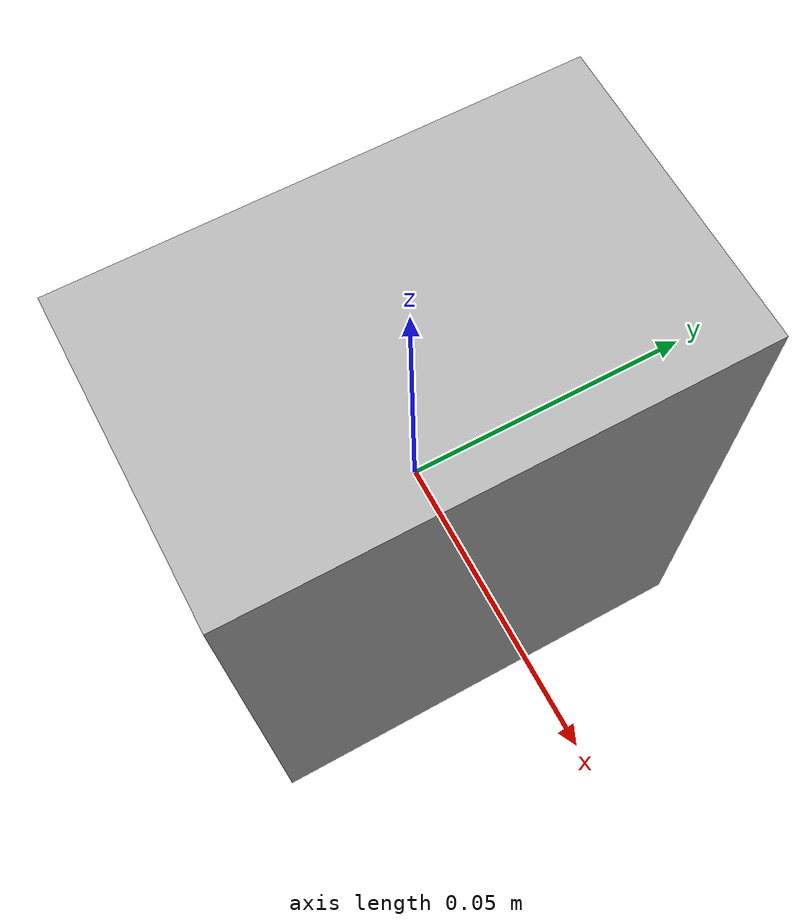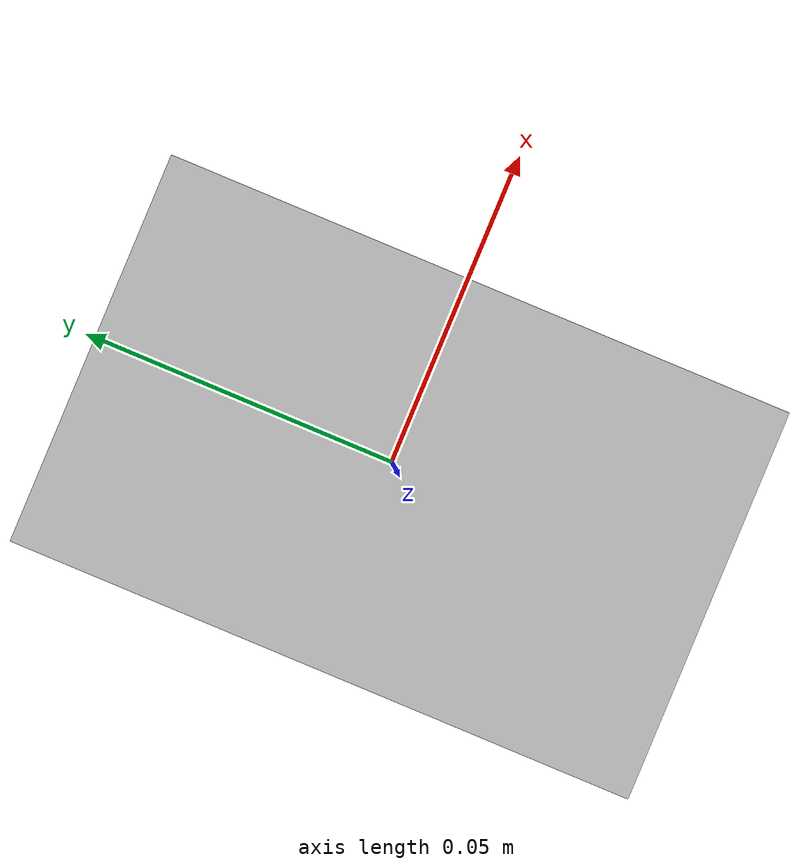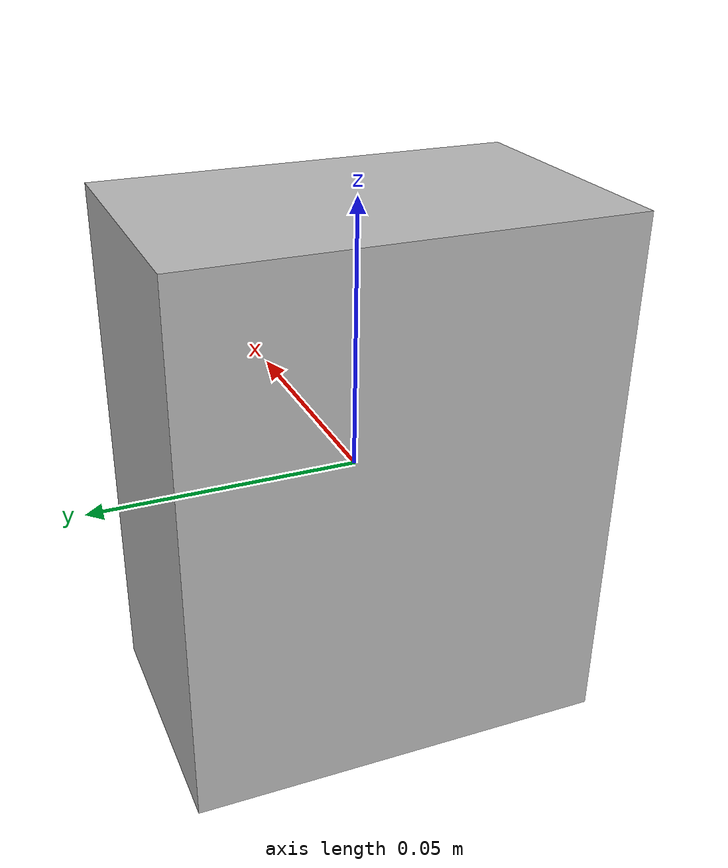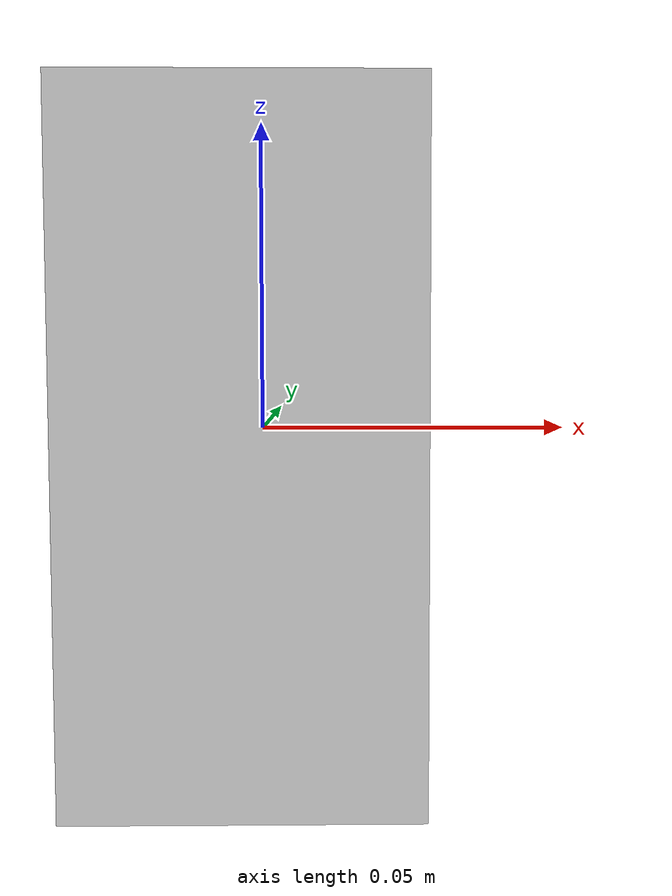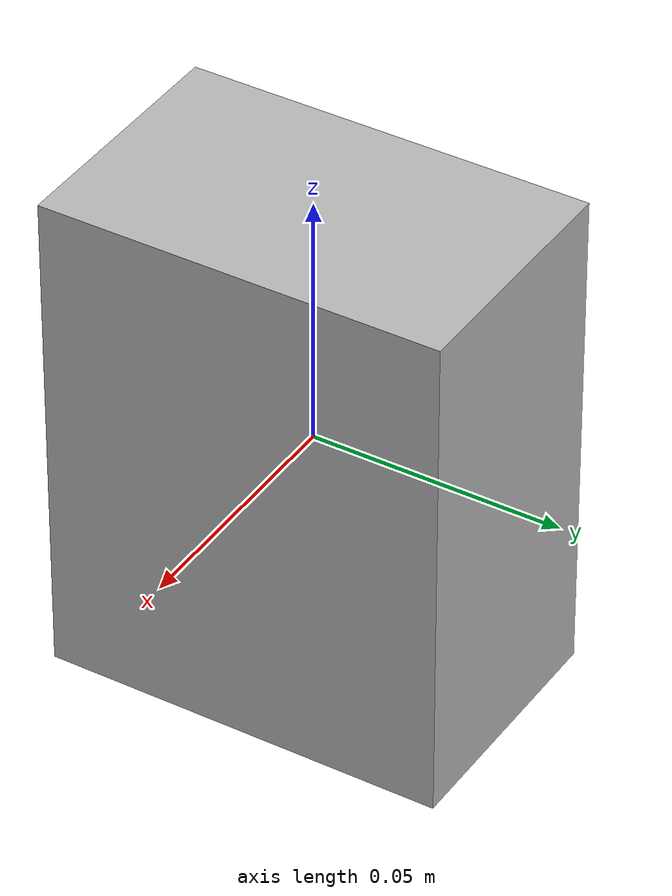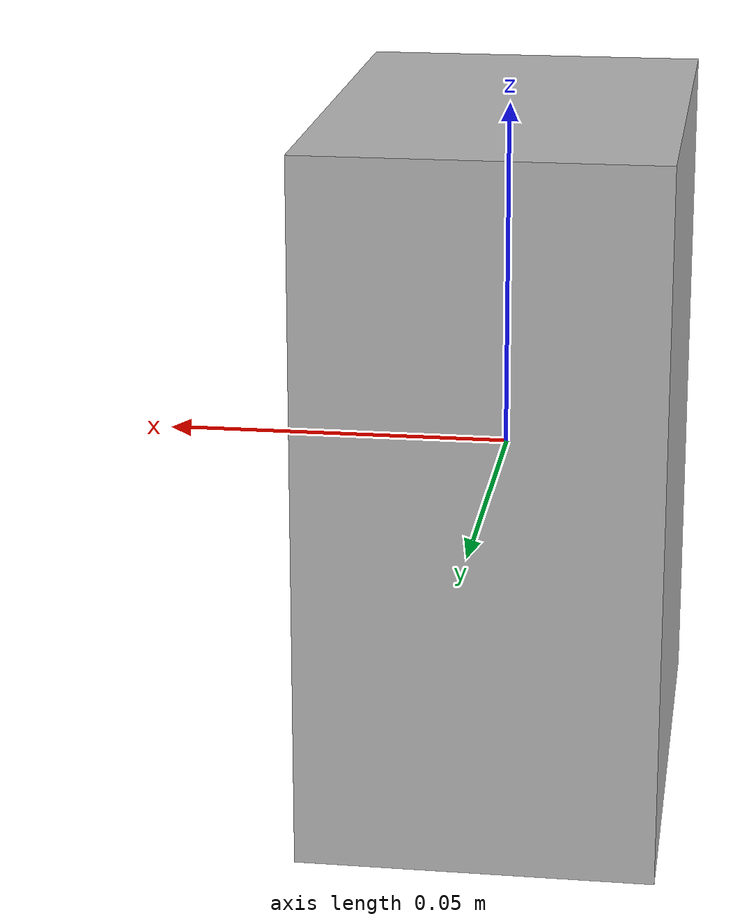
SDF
<?xml version="1.0" ?>
<sdf version="1.11">

  <model name="camera_model">

    <link name="camera_link">
      <pose>0 0 0 0 0 0</pose>
      <visual name="camera_visual">
        <geometry>
          <box>
            <size>0.05 0.08 0.1</size>
          </box>
        </geometry>
      </visual>

      <sensor name="camera_sensor" type="camera">
        <camera>
          <horizontal_fov>1.096</horizontal_fov>
          <image>
              <width>1920</width>
              <height>1080</height>
              <format>R8G8B8</format>
          </image>
          <clip>
            <near>0.1</near>
            <far>100</far>
          </clip>
        </camera>
        <always_on>1</always_on>
        <update_rate>30</update_rate>
        <visualize>true</visualize>
        <topic>/camera_image</topic>
      </sensor>
    </link>

  </model>
  </sdf>
